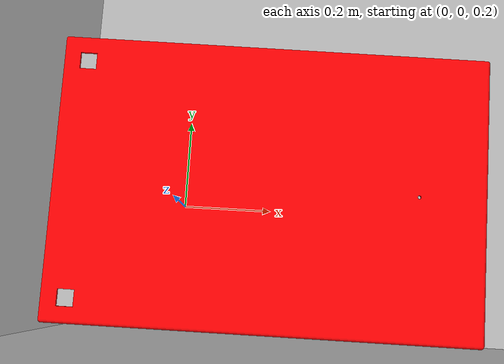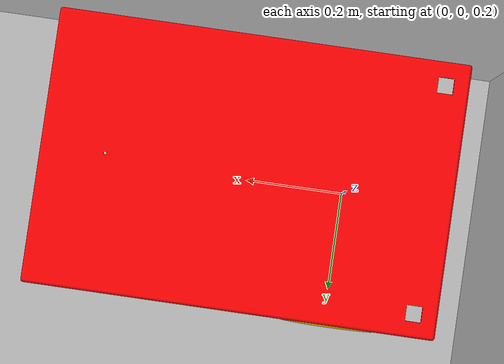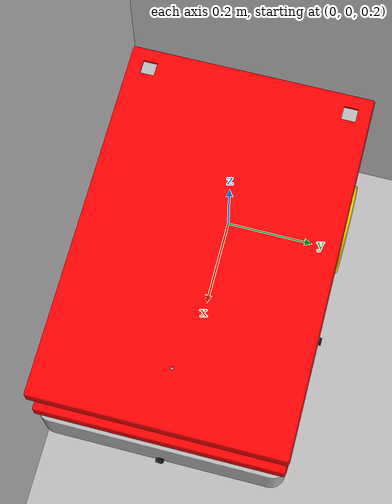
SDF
<?xml version="1.0" ?>

<sdf version='1.7'>
  <world name='default'>

    <gui>
     <camera name="user_camera">
       <pose>-8.2 7.2 17 0 0.5 0.6</pose>
     </camera>
    </gui>

    <scene>
      <grid>false</grid>
      <ambient>0.4 0.4 0.4 1</ambient>
      <background>0.7 0.7 0.7 1</background>
      <shadows>1</shadows>
    </scene>

    <!-- Global light source -->
    <light name='sun' type='directional'>
      <cast_shadows>1</cast_shadows>
      <pose>0 0 10 0 -0 0</pose>
      <diffuse>0.8 0.8 0.8 1</diffuse>
      <specular>0.2 0.2 0.2 1</specular>
      <attenuation>
        <range>1000</range>
        <constant>0.9</constant>
        <linear>0.01</linear>
        <quadratic>0.001</quadratic>
      </attenuation>
      <direction>-0.5 0.1 -0.9</direction>
    </light>

    <gravity>0 0 -9.8</gravity>
    <magnetic_field>6e-06 2.3e-05 -4.2e-05</magnetic_field>

    <physics type='ode'>
      <max_step_size>0.001</max_step_size>
      <real_time_factor>1</real_time_factor>
      <real_time_update_rate>1000</real_time_update_rate>
    </physics>

    <!-- Factory -->
    <include>
      <name>factory</name>
      <pose>-0.3 -0.3 0 0 0 0</pose>
      <uri>model://factory_v1</uri>
    </include>

    <include>
      <pose>0 0 0.33 0 0 0</pose>
      <uri>model://scooby</uri>
    </include>

    <!-- Factory light sources -->
    <light name='user_point_light_0' type='point'>
      <pose>7 4 3.9 0 -0 0</pose>
      <diffuse>0.5 0.5 0.5 1</diffuse>
      <specular>0.1 0.1 0.1 1</specular>
      <attenuation>
        <range>20</range>
        <constant>0.01</constant>
        <linear>0.01</linear>
        <quadratic>0.02</quadratic>
      </attenuation>
      <cast_shadows>0</cast_shadows>
      <direction>0 0 -1</direction>
      <spot>
        <inner_angle>0</inner_angle>
        <outer_angle>0</outer_angle>
        <falloff>0</falloff>
      </spot>
    </light>
    <light name='user_point_light_1' type='point'>
      <pose>8 12 3.9 0 -0 0</pose>
      <diffuse>0.5 0.5 0.5 1</diffuse>
      <specular>0.1 0.1 0.1 1</specular>
      <attenuation>
        <range>20</range>
        <constant>0.01</constant>
        <linear>0.01</linear>
        <quadratic>0.02</quadratic>
      </attenuation>
      <cast_shadows>0</cast_shadows>
      <direction>0 0 -1</direction>
      <spot>
        <inner_angle>0</inner_angle>
        <outer_angle>0</outer_angle>
        <falloff>0</falloff>
      </spot>
    </light>
    <light name='user_point_light_2' type='point'>
      <pose>20 11.5 3.9 0 -0 0</pose>
      <diffuse>0.5 0.5 0.5 1</diffuse>
      <specular>0.1 0.1 0.1 1</specular>
      <attenuation>
        <range>20</range>
        <constant>0.01</constant>
        <linear>0.01</linear>
        <quadratic>0.02</quadratic>
      </attenuation>
      <cast_shadows>0</cast_shadows>
      <direction>0 0 -1</direction>
      <spot>
        <inner_angle>0</inner_angle>
        <outer_angle>0</outer_angle>
        <falloff>0</falloff>
      </spot>
    </light>
    <light name='user_point_light_3' type='point'>
      <pose>0.7 16 3.9 0 -0 0</pose>
      <diffuse>0.5 0.5 0.5 1</diffuse>
      <specular>0.1 0.1 0.1 1</specular>
      <attenuation>
        <range>20</range>
        <constant>0.01</constant>
        <linear>0.01</linear>
        <quadratic>0.02</quadratic>
      </attenuation>
      <cast_shadows>0</cast_shadows>
      <direction>0 0 -1</direction>
      <spot>
        <inner_angle>0</inner_angle>
        <outer_angle>0</outer_angle>
        <falloff>0</falloff>
      </spot>
    </light>
    <light name='user_point_light_4' type='point'>
      <pose>24 22 3.9 0 -0 0</pose>
      <diffuse>0.5 0.5 0.5 1</diffuse>
      <specular>0.1 0.1 0.1 1</specular>
      <attenuation>
        <range>20</range>
        <constant>0.01</constant>
        <linear>0.01</linear>
        <quadratic>0.02</quadratic>
      </attenuation>
      <cast_shadows>0</cast_shadows>
      <direction>0 0 -1</direction>
      <spot>
        <inner_angle>0</inner_angle>
        <outer_angle>0</outer_angle>
        <falloff>0</falloff>
      </spot>
    </light>
    <light name='user_point_light_5' type='point'>
      <pose>16 22 3.9 0 -0 0</pose>
      <diffuse>0.5 0.5 0.5 1</diffuse>
      <specular>0.1 0.1 0.1 1</specular>
      <attenuation>
        <range>20</range>
        <constant>0.01</constant>
        <linear>0.01</linear>
        <quadratic>0.02</quadratic>
      </attenuation>
      <cast_shadows>0</cast_shadows>
      <direction>0 0 -1</direction>
      <spot>
        <inner_angle>0</inner_angle>
        <outer_angle>0</outer_angle>
        <falloff>0</falloff>
      </spot>
    </light>
    <light name='user_point_light_6' type='point'>
      <pose>8 22 3.9 0 -0 0</pose>
      <diffuse>0.5 0.5 0.5 1</diffuse>
      <specular>0.1 0.1 0.1 1</specular>
      <attenuation>
        <range>20</range>
        <constant>0.01</constant>
        <linear>0.01</linear>
        <quadratic>0.02</quadratic>
      </attenuation>
      <cast_shadows>0</cast_shadows>
      <direction>0 0 -1</direction>
      <spot>
        <inner_angle>0</inner_angle>
        <outer_angle>0</outer_angle>
        <falloff>0</falloff>
      </spot>
    </light>
    <light name='user_point_light_7' type='point'>
      <pose>24 32 3.9 0 -0 0</pose>
      <diffuse>0.5 0.5 0.5 1</diffuse>
      <specular>0.1 0.1 0.1 1</specular>
      <attenuation>
        <range>20</range>
        <constant>0.01</constant>
        <linear>0.01</linear>
        <quadratic>0.02</quadratic>
      </attenuation>
      <cast_shadows>0</cast_shadows>
      <direction>0 0 -1</direction>
      <spot>
        <inner_angle>0</inner_angle>
        <outer_angle>0</outer_angle>
        <falloff>0</falloff>
      </spot>
    </light>
    <light name='user_point_light_8' type='point'>
      <pose>16 32 3.9 0 -0 0</pose>
      <diffuse>0.5 0.5 0.5 1</diffuse>
      <specular>0.1 0.1 0.1 1</specular>
      <attenuation>
        <range>20</range>
        <constant>0.01</constant>
        <linear>0.01</linear>
        <quadratic>0.02</quadratic>
      </attenuation>
      <cast_shadows>0</cast_shadows>
      <direction>0 0 -1</direction>
      <spot>
        <inner_angle>0</inner_angle>
        <outer_angle>0</outer_angle>
        <falloff>0</falloff>
      </spot>
    </light>
    <light name='user_point_light_9' type='point'>
      <pose>8 32 3.9 0 -0 0</pose>
      <diffuse>0.5 0.5 0.5 1</diffuse>
      <specular>0.1 0.1 0.1 1</specular>
      <attenuation>
        <range>20</range>
        <constant>0.01</constant>
        <linear>0.01</linear>
        <quadratic>0.02</quadratic>
      </attenuation>
      <cast_shadows>0</cast_shadows>
      <direction>0 0 -1</direction>
      <spot>
        <inner_angle>0</inner_angle>
        <outer_angle>0</outer_angle>
        <falloff>0</falloff>
      </spot>
    </light>
    <light name='user_point_light_10' type='point'>
      <pose>24 42 3.9 0 -0 0</pose>
      <diffuse>0.5 0.5 0.5 1</diffuse>
      <specular>0.1 0.1 0.1 1</specular>
      <attenuation>
        <range>20</range>
        <constant>0.01</constant>
        <linear>0.01</linear>
        <quadratic>0.02</quadratic>
      </attenuation>
      <cast_shadows>0</cast_shadows>
      <direction>0 0 -1</direction>
      <spot>
        <inner_angle>0</inner_angle>
        <outer_angle>0</outer_angle>
        <falloff>0</falloff>
      </spot>
    </light>
    <light name='user_point_light_11' type='point'>
      <pose>16 42 3.9 0 -0 0</pose>
      <diffuse>0.5 0.5 0.5 1</diffuse>
      <specular>0.1 0.1 0.1 1</specular>
      <attenuation>
        <range>20</range>
        <constant>0.01</constant>
        <linear>0.01</linear>
        <quadratic>0.02</quadratic>
      </attenuation>
      <cast_shadows>0</cast_shadows>
      <direction>0 0 -1</direction>
      <spot>
        <inner_angle>0</inner_angle>
        <outer_angle>0</outer_angle>
        <falloff>0</falloff>
      </spot>
    </light>
    <light name='user_point_light_12' type='point'>
      <pose>8 42 3.9 0 -0 0</pose>
      <diffuse>0.5 0.5 0.5 1</diffuse>
      <specular>0.1 0.1 0.1 1</specular>
      <attenuation>
        <range>20</range>
        <constant>0.01</constant>
        <linear>0.01</linear>
        <quadratic>0.02</quadratic>
      </attenuation>
      <cast_shadows>0</cast_shadows>
      <direction>0 0 -1</direction>
      <spot>
        <inner_angle>0</inner_angle>
        <outer_angle>0</outer_angle>
        <falloff>0</falloff>
      </spot>
    </light>
    <light name='user_point_light_13' type='point'>
      <pose>24 52 3.9 0 -0 0</pose>
      <diffuse>0.5 0.5 0.5 1</diffuse>
      <specular>0.1 0.1 0.1 1</specular>
      <attenuation>
        <range>20</range>
        <constant>0.01</constant>
        <linear>0.01</linear>
        <quadratic>0.02</quadratic>
      </attenuation>
      <cast_shadows>0</cast_shadows>
      <direction>0 0 -1</direction>
      <spot>
        <inner_angle>0</inner_angle>
        <outer_angle>0</outer_angle>
        <falloff>0</falloff>
      </spot>
    </light>
    <light name='user_point_light_14' type='point'>
      <pose>16 52 3.9 0 -0 0</pose>
      <diffuse>0.5 0.5 0.5 1</diffuse>
      <specular>0.1 0.1 0.1 1</specular>
      <attenuation>
        <range>20</range>
        <constant>0.01</constant>
        <linear>0.01</linear>
        <quadratic>0.02</quadratic>
      </attenuation>
      <cast_shadows>0</cast_shadows>
      <direction>0 0 -1</direction>
      <spot>
        <inner_angle>0</inner_angle>
        <outer_angle>0</outer_angle>
        <falloff>0</falloff>
      </spot>
    </light>
    <light name='user_point_light_15' type='point'>
      <pose>8 52 3.9 0 -0 0</pose>
      <diffuse>0.5 0.5 0.5 1</diffuse>
      <specular>0.1 0.1 0.1 1</specular>
      <attenuation>
        <range>20</range>
        <constant>0.01</constant>
        <linear>0.01</linear>
        <quadratic>0.02</quadratic>
      </attenuation>
      <cast_shadows>0</cast_shadows>
      <direction>0 0 -1</direction>
      <spot>
        <inner_angle>0</inner_angle>
        <outer_angle>0</outer_angle>
        <falloff>0</falloff>
      </spot>
    </light>
    <light name='user_point_light_16' type='point'>
      <pose>24 62 3.9 0 -0 0</pose>
      <diffuse>0.5 0.5 0.5 1</diffuse>
      <specular>0.1 0.1 0.1 1</specular>
      <attenuation>
        <range>20</range>
        <constant>0.01</constant>
        <linear>0.01</linear>
        <quadratic>0.02</quadratic>
      </attenuation>
      <cast_shadows>0</cast_shadows>
      <direction>0 0 -1</direction>
      <spot>
        <inner_angle>0</inner_angle>
        <outer_angle>0</outer_angle>
        <falloff>0</falloff>
      </spot>
    </light>
    <light name='user_point_light_17' type='point'>
      <pose>16 62 3.9 0 -0 0</pose>
      <diffuse>0.5 0.5 0.5 1</diffuse>
      <specular>0.1 0.1 0.1 1</specular>
      <attenuation>
        <range>20</range>
        <constant>0.01</constant>
        <linear>0.01</linear>
        <quadratic>0.02</quadratic>
      </attenuation>
      <cast_shadows>0</cast_shadows>
      <direction>0 0 -1</direction>
      <spot>
        <inner_angle>0</inner_angle>
        <outer_angle>0</outer_angle>
        <falloff>0</falloff>
      </spot>
    </light>
    <light name='user_point_light_18' type='point'>
      <pose>8 62 3.9 0 -0 0</pose>
      <diffuse>0.5 0.5 0.5 1</diffuse>
      <specular>0.1 0.1 0.1 1</specular>
      <attenuation>
        <range>20</range>
        <constant>0.01</constant>
        <linear>0.01</linear>
        <quadratic>0.02</quadratic>
      </attenuation>
      <cast_shadows>0</cast_shadows>
      <direction>0 0 -1</direction>
      <spot>
        <inner_angle>0</inner_angle>
        <outer_angle>0</outer_angle>
        <falloff>0</falloff>
      </spot>
    </light>
    <light name='user_point_light_19' type='point'>
      <pose>24 72 3.9 0 -0 0</pose>
      <diffuse>0.5 0.5 0.5 1</diffuse>
      <specular>0.1 0.1 0.1 1</specular>
      <attenuation>
        <range>20</range>
        <constant>0.01</constant>
        <linear>0.01</linear>
        <quadratic>0.02</quadratic>
      </attenuation>
      <cast_shadows>0</cast_shadows>
      <direction>0 0 -1</direction>
      <spot>
        <inner_angle>0</inner_angle>
        <outer_angle>0</outer_angle>
        <falloff>0</falloff>
      </spot>
    </light>
    <light name='user_point_light_20' type='point'>
      <pose>16 72 3.9 0 -0 0</pose>
      <diffuse>0.5 0.5 0.5 1</diffuse>
      <specular>0.1 0.1 0.1 1</specular>
      <attenuation>
        <range>20</range>
        <constant>0.01</constant>
        <linear>0.01</linear>
        <quadratic>0.02</quadratic>
      </attenuation>
      <cast_shadows>0</cast_shadows>
      <direction>0 0 -1</direction>
      <spot>
        <inner_angle>0</inner_angle>
        <outer_angle>0</outer_angle>
        <falloff>0</falloff>
      </spot>
    </light>
    <light name='user_point_light_21' type='point'>
      <pose>8 72 3.9 0 -0 0</pose>
      <diffuse>0.5 0.5 0.5 1</diffuse>
      <specular>0.1 0.1 0.1 1</specular>
      <attenuation>
        <range>20</range>
        <constant>0.01</constant>
        <linear>0.01</linear>
        <quadratic>0.02</quadratic>
      </attenuation>
      <cast_shadows>0</cast_shadows>
      <direction>0 0 -1</direction>
      <spot>
        <inner_angle>0</inner_angle>
        <outer_angle>0</outer_angle>
        <falloff>0</falloff>
      </spot>
    </light>
    <light name='user_point_light_22' type='point'>
      <pose>24 82 3.9 0 -0 0</pose>
      <diffuse>0.5 0.5 0.5 1</diffuse>
      <specular>0.1 0.1 0.1 1</specular>
      <attenuation>
        <range>20</range>
        <constant>0.01</constant>
        <linear>0.01</linear>
        <quadratic>0.02</quadratic>
      </attenuation>
      <cast_shadows>0</cast_shadows>
      <direction>0 0 -1</direction>
      <spot>
        <inner_angle>0</inner_angle>
        <outer_angle>0</outer_angle>
        <falloff>0</falloff>
      </spot>
    </light>
    <light name='user_point_light_23' type='point'>
      <pose>16 82 3.9 0 -0 0</pose>
      <diffuse>0.5 0.5 0.5 1</diffuse>
      <specular>0.1 0.1 0.1 1</specular>
      <attenuation>
        <range>20</range>
        <constant>0.01</constant>
        <linear>0.01</linear>
        <quadratic>0.02</quadratic>
      </attenuation>
      <cast_shadows>0</cast_shadows>
      <direction>0 0 -1</direction>
      <spot>
        <inner_angle>0</inner_angle>
        <outer_angle>0</outer_angle>
        <falloff>0</falloff>
      </spot>
    </light>
    <light name='user_point_light_24' type='point'>
      <pose>8 82 3.9 0 -0 0</pose>
      <diffuse>0.5 0.5 0.5 1</diffuse>
      <specular>0.1 0.1 0.1 1</specular>
      <attenuation>
        <range>20</range>
        <constant>0.01</constant>
        <linear>0.01</linear>
        <quadratic>0.02</quadratic>
      </attenuation>
      <cast_shadows>0</cast_shadows>
      <direction>0 0 -1</direction>
      <spot>
        <inner_angle>0</inner_angle>
        <outer_angle>0</outer_angle>
        <falloff>0</falloff>
      </spot>
    </light>
    <light name='user_point_light_25' type='point'>
      <pose>24 92 3.9 0 -0 0</pose>
      <diffuse>0.5 0.5 0.5 1</diffuse>
      <specular>0.1 0.1 0.1 1</specular>
      <attenuation>
        <range>20</range>
        <constant>0.01</constant>
        <linear>0.01</linear>
        <quadratic>0.02</quadratic>
      </attenuation>
      <cast_shadows>0</cast_shadows>
      <direction>0 0 -1</direction>
      <spot>
        <inner_angle>0</inner_angle>
        <outer_angle>0</outer_angle>
        <falloff>0</falloff>
      </spot>
    </light>
    <light name='user_point_light_26' type='point'>
      <pose>16 92 3.9 0 -0 0</pose>
      <diffuse>0.5 0.5 0.5 1</diffuse>
      <specular>0.1 0.1 0.1 1</specular>
      <attenuation>
        <range>20</range>
        <constant>0.01</constant>
        <linear>0.01</linear>
        <quadratic>0.02</quadratic>
      </attenuation>
      <cast_shadows>0</cast_shadows>
      <direction>0 0 -1</direction>
      <spot>
        <inner_angle>0</inner_angle>
        <outer_angle>0</outer_angle>
        <falloff>0</falloff>
      </spot>
    </light>
    <light name='user_point_light_27' type='point'>
      <pose>8 92 3.9 0 -0 0</pose>
      <diffuse>0.5 0.5 0.5 1</diffuse>
      <specular>0.1 0.1 0.1 1</specular>
      <attenuation>
        <range>20</range>
        <constant>0.01</constant>
        <linear>0.01</linear>
        <quadratic>0.02</quadratic>
      </attenuation>
      <cast_shadows>0</cast_shadows>
      <direction>0 0 -1</direction>
      <spot>
        <inner_angle>0</inner_angle>
        <outer_angle>0</outer_angle>
        <falloff>0</falloff>
      </spot>
    </light>

  </world>
</sdf>

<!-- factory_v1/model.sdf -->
<sdf version='1.7'>
  <model name='factory_v1'>

    <link name='link_0'>

      <pose>0 0 0 0 0 0</pose>
      <gravity>1</gravity>
      <self_collide>0</self_collide>
      <kinematic>0</kinematic>
      <enable_wind>0</enable_wind>

      <visual name='visual'>
        <pose>0 0 0 0 0 0</pose>
        <geometry>
          <mesh>
            <uri>model://factory_v1/meshes/factory.dae</uri>
            <scale>1 1 1</scale>
          </mesh>
        </geometry>
        <transparency>0</transparency>
        <cast_shadows>1</cast_shadows>
      </visual>

      <collision name='collision'>
        <laser_retro>0</laser_retro>
        <max_contacts>10</max_contacts>
        <pose>0 0 0 0 0 0</pose>
        <geometry>
          <mesh>
            <uri>model://factory_v1/meshes/factory.dae</uri>
            <scale>1 1 1</scale>
          </mesh>
        </geometry>
        <surface>
          <friction>
            <ode>
              <mu>1</mu>
              <mu2>1</mu2>
              <fdir1>0 0 0</fdir1>
              <slip1>0</slip1>
              <slip2>0</slip2>
            </ode>
            <torsional>
              <coefficient>1</coefficient>
              <patch_radius>0</patch_radius>
              <surface_radius>0</surface_radius>
              <use_patch_radius>1</use_patch_radius>
              <ode>
                <slip>0</slip>
              </ode>
            </torsional>
          </friction>
          <contact>
            <collide_without_contact>0</collide_without_contact>
            <collide_without_contact_bitmask>1</collide_without_contact_bitmask>
            <collide_bitmask>1</collide_bitmask>
            <ode>
              <soft_cfm>0</soft_cfm>
              <soft_erp>0.2</soft_erp>
              <kp>1e+13</kp>
              <kd>1</kd>
              <max_vel>0.01</max_vel>
              <min_depth>0</min_depth>
            </ode>
          </contact>
        </surface>
      </collision>

    </link>
    <static>1</static>
    <allow_auto_disable>1</allow_auto_disable>
  </model>
</sdf>

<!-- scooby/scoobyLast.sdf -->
<sdf version='1.7'>
  <model name='scooby'>
    <link name='base_link'>
      <inertial>
       <pose>0 0 0 0 -0 0</pose>
        <mass>7.4313</mass>
        <inertia>
          <ixx>0.31999</ixx>
          <ixy>2.761E-07</ixy>
          <ixz>0.014025</ixz>
          <iyy>0.58221</iyy>
          <iyz>-3.6194E-08</iyz>
          <izz>0.76546</izz>
        </inertia>
      </inertial>
      <collision name='base_link_collision'>
        <pose>0 0 0 0 -0 0</pose>
        <geometry>
          <mesh>
            <scale>1 1 1</scale>
            <uri>model://scooby/meshes/base_link.STL</uri>
          </mesh>
        </geometry>
      </collision>

      <collision name='base_link_fixed_joint_lump__Care_B_Link_collision_2'>
        <pose>0 0 0 0 -0 0</pose>
        <geometry>
          <mesh>
            <scale>1 1 1</scale>
            <uri>model://scooby/meshes/Care_B_Link.STL</uri>
          </mesh>
        </geometry>
      </collision>
      <collision name='base_link_fixed_joint_lump__Care_Down_Velodyne_Link_collision_3'>
        <pose>0 0 0 0 -0 0</pose>
        <geometry>
          <mesh>
            <scale>1 1 1</scale>
            <uri>model://scooby/meshes/Care_Down_Velodyne_Link.dae</uri>
          </mesh>
        </geometry>
      </collision>
      <collision name='base_link_fixed_joint_lump__Care_F_Link_collision_4'>
        <pose>0 0 0 0 -0 0</pose>
        <geometry>
          <mesh>
            <scale>1 1 1</scale>
            <uri>model://scooby/meshes/Care_F_Link.STL</uri>
          </mesh>
        </geometry>
      </collision>
      <collision name='base_link_fixed_joint_lump__Care_L_Link_collision_5'>
        <pose>0 0 0 0 -0 0</pose>
        <geometry>
          <mesh>
            <scale>1 1 1</scale>
            <uri>model://scooby/meshes/Care_L_Link.STL</uri>
          </mesh>
        </geometry>
      </collision>
      <collision name='base_link_fixed_joint_lump__Care_R_Link_collision_6'>
        <pose>0 0 0 0 -0 0</pose>
        <geometry>
          <mesh>
            <scale>1 1 1</scale>
            <uri>model://scooby/meshes/Care_R_Link.STL</uri>
          </mesh>
        </geometry>
      </collision>
      <collision name='base_link_fixed_joint_lump__Care_UP_Velodyne_Link_collision_7'>
        <pose>0 0 0 0 -0 0</pose>
        <geometry>
          <mesh>
            <scale>1 1 1</scale>
            <uri>model://scooby/meshes/Care_UP_Velodyne_Link.dae</uri>
          </mesh>
        </geometry>
      </collision>
      <collision name='base_link_fixed_joint_lump__IMU_F_Link_collision_8'>
        <pose>0.473193 -0.020487 0.07725 0 -0 0</pose>
        <geometry>
          <mesh>
            <scale>1 1 1</scale>
            <uri>model://scooby/meshes/IMU_F_Link.STL</uri>
          </mesh>
        </geometry>
      </collision>

      <collision name='base_link_fixed_joint_lump__UTS_B_Link_collision_10'>
        <pose>-0.199908 0 -0.02 0 -0 0</pose>
        <geometry>
          <mesh>
            <scale>1 1 1</scale>
            <uri>model://scooby/meshes/UTS_B_Link.dae</uri>
          </mesh>
        </geometry>
      </collision>
      <collision name='base_link_fixed_joint_lump__UTS_F_Link_collision_11'>
        <pose>0.527198 0 -0.02 3.14159 1.5708 0</pose>
        <geometry>
          <mesh>
            <scale>1 1 1</scale>
            <uri>model://scooby/meshes/UTS_F_Link.dae</uri>
          </mesh>
        </geometry>
      </collision>
      <collision name='base_link_fixed_joint_lump__UTS_L_Link_collision_12'>
        <pose>0.259268 0.270588 -0.02 0 -0 0</pose>
        <geometry>
          <mesh>
            <scale>1 1 1</scale>
            <uri>model://scooby/meshes/UTS_L_Link.dae</uri>
          </mesh>
        </geometry>
      </collision>
      <collision name='base_link_fixed_joint_lump__UTS_R_Link_collision_13'>
        <pose>0.259273 -0.270588 -0.02 0 -0 0</pose>
        <geometry>
          <mesh>
            <scale>1 1 1</scale>
            <uri>model://scooby/meshes/UTS_R_Link.dae</uri>
          </mesh>
        </geometry>
      </collision>
      <collision name='base_link_fixed_joint_lump__Velodyne_Link_collision_14'>
        <pose>0 0 0 0 -0 0</pose>
        <geometry>
          <mesh>
            <scale>1 1 1</scale>
            <uri>model://scooby/meshes/Velodyne_Link.STL</uri>
          </mesh>
        </geometry>
      </collision>
      <visual name='base_link_visual'>
        <pose>0 0 0 0 -0 0</pose>
        <geometry>
          <mesh>
            <scale>1 1 1</scale>
            <uri>model://scooby/meshes/base_link.STL</uri>
          </mesh>
        </geometry>
      </visual>

      <visual name='base_link_fixed_joint_lump__Care_B_Link_visual_2'>
        <pose>0 0 0 0 -0 0</pose>
        <geometry>
          <mesh>
            <scale>1 1 1</scale>
            <uri>model://scooby/meshes/Care_B_Link.STL</uri>
          </mesh>
        </geometry>
      </visual>
      <visual name='base_link_fixed_joint_lump__Care_Down_Velodyne_Link_visual_3'>
        <pose>0 0 0 0 -0 0</pose>
        <geometry>
          <mesh>
            <scale>1 1 1</scale>
            <uri>model://scooby/meshes/Care_Down_Velodyne_Link.dae</uri>
          </mesh>
        </geometry>
      </visual>
      <visual name='base_link_fixed_joint_lump__Care_F_Link_visual_4'>
        <pose>0 0 0 0 -0 0</pose>
        <geometry>
          <mesh>
            <scale>1 1 1</scale>
            <uri>model://scooby/meshes/Care_F_Link.STL</uri>
          </mesh>
        </geometry>
      </visual>
      <visual name='base_link_fixed_joint_lump__Care_L_Link_visual_5'>
        <pose>0 0 0 0 -0 0</pose>
        <geometry>
          <mesh>
            <scale>1 1 1</scale>
            <uri>model://scooby/meshes/Care_L_Link.STL</uri>
          </mesh>
        </geometry>
      </visual>
      <visual name='base_link_fixed_joint_lump__Care_R_Link_visual_6'>
        <pose>0 0 0 0 -0 0</pose>
        <geometry>
          <mesh>
            <scale>1 1 1</scale>
            <uri>model://scooby/meshes/Care_R_Link.STL</uri>
          </mesh>
        </geometry>
      </visual>
      <visual name='base_link_fixed_joint_lump__Care_UP_Velodyne_Link_visual_7'>
        <pose>0 0 0 0 -0 0</pose>
        <geometry>
          <mesh>
            <scale>1 1 1</scale>
            <uri>model://scooby/meshes/Care_UP_Velodyne_Link.dae</uri>
          </mesh>
        </geometry>
      </visual>
      <visual name='base_link_fixed_joint_lump__IMU_F_Link_visual_8'>
        <pose>0.473193 -0.020487 0.07725 0 -0 0</pose>
        <geometry>
          <mesh>
            <scale>1 1 1</scale>
            <uri>model://scooby/meshes/IMU_F_Link.STL</uri>
          </mesh>
        </geometry>
      </visual>

      <visual name='base_link_fixed_joint_lump__UTS_B_Link_visual_10'>
        <pose>-0.199908 0 -0.02 0 -0 0</pose>
        <geometry>
          <mesh>
            <scale>1 1 1</scale>
            <uri>model://scooby/meshes/UTS_B_Link.dae</uri>
          </mesh>
        </geometry>
      </visual>
      <visual name='base_link_fixed_joint_lump__UTS_F_Link_visual_11'>
        <pose>0.527198 0 -0.02 3.14159 1.5708 0</pose>
        <geometry>
          <mesh>
            <scale>1 1 1</scale>
            <uri>model://scooby/meshes/UTS_F_Link.dae</uri>
          </mesh>
        </geometry>
      </visual>
      <visual name='base_link_fixed_joint_lump__UTS_L_Link_visual_12'>
        <pose>0.259268 0.270588 -0.02 0 -0 0</pose>
        <geometry>
          <mesh>
            <scale>1 1 1</scale>
            <uri>model://scooby/meshes/UTS_L_Link.dae</uri>
          </mesh>
        </geometry>
      </visual>
      <visual name='base_link_fixed_joint_lump__UTS_R_Link_visual_13'>
        <pose>0.259273 -0.270588 -0.02 0 -0 0</pose>
        <geometry>
          <mesh>
            <scale>1 1 1</scale>
            <uri>model://scooby/meshes/UTS_R_Link.dae</uri>
          </mesh>
        </geometry>
      </visual>
      <visual name='base_link_fixed_joint_lump__Velodyne_Link_visual_14'>
        <pose>0.4672 0 0.178136 0 -0 0</pose>
        <geometry>
          <mesh>
            <scale>1 1 1</scale>
            <uri>model://scooby/meshes/Velodyne_Link.STL</uri>
          </mesh>
        </geometry>
      </visual>

<!-- ultrasonic sensor right -->

      <!-- ultrasonic sensor left -->

      <sensor name="sensor_ray" type="ray">
        <pose>0.4672 0 0.178136 0 -0 0</pose>
        <ray>
          <scan>
            <horizontal>
              <samples>200</samples>
              <resolution>1.0</resolution>
              <min_angle>-1.57.</min_angle>
              <max_angle>1.57</max_angle>
            </horizontal>
          </scan>
          <range>
            <min>0.05</min>
            <max>50.0</max>
          </range>
        </ray>
        <always_on>true</always_on>
        <visualize>true</visualize>
        <update_rate>50.0</update_rate>
        <plugin name="laser" filename="libgazebo_ros_ray_sensor.so">
          <ros>
            <remapping>~/out:=scan</remapping>
          </ros>
          <frame_name>UTS_F_Link</frame_name>
          <output_type>sensor_msgs/LaserScan</output_type>
        </plugin>
      </sensor>

    </link>

    <joint name='Garfo_Joint' type='fixed'>
      <pose relative_to='base_link'>0.39427 0 0.07325 0 -0 0</pose>
      <parent>base_link</parent>
      <child>Garfo_Link</child>
      <axis>
        <xyz>0 0 1</xyz>
        <limit>
          <lower>-1e+16</lower>
          <upper>1e+16</upper>
        </limit>
        <dynamics>
          <spring_reference>0</spring_reference>
          <spring_stiffness>0</spring_stiffness>
        </dynamics>
      </axis>
    </joint>
    <link name='Garfo_Link'>
      <pose relative_to='Garfo_Joint'>0 0 0 0 -0 0</pose>
      <inertial>
        <pose>0.008845 -4.2e-05 -0.026395 0 -0 0</pose>
        <mass>0.056343</mass>
        <inertia>
          <ixx>6.39445e-05</ixx>
          <ixy>1.72309e-08</ixy>
          <ixz>1.08977e-05</ixz>
          <iyy>6.7327e-05</iyy>
          <iyz>-3.73912e-08</iyz>
          <izz>2.76031e-05</izz>
        </inertia>
      </inertial>
      <collision name='Garfo_Link_collision'>
        <pose>0 0 0 0 -0 0</pose>
        <geometry>
          <mesh>
            <scale>1 1 1</scale>
            <uri>model://scooby/meshes/Garfo_Link.STL</uri>
          </mesh>
        </geometry>
      </collision>
      <visual name='Garfo_Link_visual'>
        <pose>0 0 0 0 -0 0</pose>
        <geometry>
          <mesh>
            <scale>1 1 1</scale>
            <uri>model://scooby/meshes/Garfo_Link.STL</uri>
          </mesh>
        </geometry>
      </visual>
    </link>
    <joint name='Castor_Joint' type='fixed'>
      <pose relative_to='Garfo_Link'>0.032501 -0.000163 -0.098248 0 -0 0</pose>
      <parent>Garfo_Link</parent>
      <child>Castor_Link</child>
      <axis>
        <xyz>0.005021 0.999987 0</xyz>
        <limit>
          <lower>-1e+16</lower>
          <upper>1e+16</upper>
        </limit>
        <dynamics>
          <spring_reference>0</spring_reference>
          <spring_stiffness>0</spring_stiffness>
        </dynamics>
      </axis>
    </joint>
    <link name='Castor_Link'>
      <pose relative_to='Castor_Joint'>0 0 0 0 -0 0</pose>
      <inertial>
        <pose>-0 0 0 0 -0 0</pose>
        <mass>0.348291</mass>
        <inertia>
          <ixx>0.000494821</ixx>
          <ixy>2.36991e-06</ixy>
          <ixz>-7.72435e-20</ixz>
          <iyy>0.000966806</iyy>
          <iyz>-6.56036e-18</iyz>
          <izz>0.000494809</izz>
        </inertia>
      </inertial>
      <collision name='Castor_Link_collision'>
        <pose>0 0 0 0 -0 0</pose>
        <geometry>
          <mesh>
            <scale>1 1 1</scale>
            <uri>model://scooby/meshes/Castor_Link.dae</uri>
          </mesh>
        </geometry>
      </collision>
      <visual name='Castor_Link_visual'>
        <pose>0 0 0 0 -0 0</pose>
        <geometry>
          <mesh>
            <scale>1 1 1</scale>
            <uri>model://scooby/meshes/Castor_Link.dae</uri>
          </mesh>
        </geometry>
      </visual>
    </link>
    <joint name='Roda_L_Joint' type='revolute'>
      <pose relative_to='base_link'>0 0.239 0 0 -0 0</pose>
      <parent>base_link</parent>
      <child>Roda_L_Link</child>
      <axis>
        <xyz>0 1 0</xyz>
        <limit>
          <lower>-1e+16</lower>
          <upper>1e+16</upper>
        </limit>
        <dynamics>
          <spring_reference>0</spring_reference>
          <spring_stiffness>0</spring_stiffness>
        </dynamics>
      </axis>
    </joint>
    <link name='Roda_L_Link'>
      <pose relative_to='Roda_L_Joint'>0 0 0 0 -0 0</pose>
      <inertial>
        <pose>-3e-06 -0.001905 -1e-06 0 -0 0</pose>
        <mass>1.30641</mass>
        <inertia>
          <ixx>0.00432108</ixx>
          <ixy>-7.93594e-08</ixy>
          <ixz>1.46087e-08</ixz>
          <iyy>0.00793978</iyy>
          <iyz>-3.02598e-08</iyz>
          <izz>0.00432105</izz>
        </inertia>
      </inertial>
      <collision name='Roda_L_Link_collision'>
        <pose>0 0 0 0 -0 0</pose>
        <geometry>
          <mesh>
            <scale>1 1 1</scale>
            <uri>model://scooby/meshes/Roda_L_Link.dae</uri>
          </mesh>
        </geometry>
      </collision>
      <visual name='Roda_L_Link_visual'>
        <pose>0 0 0 0 -0 0</pose>
        <geometry>
          <mesh>
            <scale>1 1 1</scale>
            <uri>model://scooby/meshes/Roda_L_Link.dae</uri>
          </mesh>
        </geometry>
      </visual>
    </link>
    <joint name='Roda_R_Joint' type='revolute'>
      <pose relative_to='base_link'>0 -0.239 0 0 -0 0</pose>
      <parent>base_link</parent>
      <child>Roda_R_Link</child>
      <axis>
        <xyz>0 1 0</xyz>
        <limit>
          <lower>-1e+16</lower>
          <upper>1e+16</upper>
        </limit>
        <dynamics>
          <spring_reference>0</spring_reference>
          <spring_stiffness>0</spring_stiffness>
        </dynamics>
      </axis>
    </joint>
    <link name='Roda_R_Link'>
      <pose relative_to='Roda_R_Joint'>0 0 0 0 -0 0</pose>
      <inertial>
        <pose>1e-06 0.001905 3e-06 0 -0 0</pose>
        <mass>1.30641</mass>
        <inertia>
          <ixx>0.00432105</ixx>
          <ixy>-1.97328e-08</ixy>
          <ixz>9.91657e-09</ixz>
          <iyy>0.00793978</iyy>
          <iyz>-8.26086e-08</iyz>
          <izz>0.00432109</izz>
        </inertia>
      </inertial>
      <collision name='Roda_R_Link_collision'>
        <pose>0 0 0 0 -0 0</pose>
        <geometry>
          <mesh>
            <scale>1 1 1</scale>
            <uri>model://scooby/meshes/Roda_R_Link.dae</uri>
          </mesh>
        </geometry>
      </collision>
      <visual name='Roda_R_Link_visual'>
        <pose>0 0 0 0 -0 0</pose>
        <geometry>
          <mesh>
            <scale>1 1 1</scale>
            <uri>model://scooby/meshes/Roda_R_Link.dae</uri>
          </mesh>
        </geometry>
      </visual>
    </link>

    <plugin name='diff_drive' filename='libgazebo_ros_diff_drive.so'>

      <ros>
        <argument>tf:=tf</argument>
        <argument>odom:=odom</argument>
      </ros>

      <update_rate>50.0</update_rate>

      <!-- wheels -->
      <left_joint>Roda_L_Joint</left_joint>
      <right_joint>Roda_R_Joint</right_joint>

      <!-- kinematics -->
      <wheel_separation>0.406</wheel_separation>
      <wheel_diameter>0.200</wheel_diameter>

      <!-- limits -->
      <max_wheel_torque>20</max_wheel_torque>
      <max_wheel_acceleration>0.5</max_wheel_acceleration>

      <!-- output -->
      <publish_odom>true</publish_odom>
      <publish_odom_tf>true</publish_odom_tf>

      <odometry_frame>odom</odometry_frame>
      <robot_base_frame>base_link</robot_base_frame>

    </plugin>

    <plugin name="scooby_joint_state" filename="libgazebo_ros_joint_state_publisher.so">
      <ros>
        <remapping>~/out:=joint_states</remapping>
      </ros>
      <update_rate>50</update_rate>
      <joint_name>Roda_R_Joint</joint_name>
      <joint_name>Roda_L_Joint</joint_name>
    </plugin>

    <link name="imu_link">
      <sensor name="scooby_imu" type="imu">
        <always_on>true</always_on>
        <update_rate>200</update_rate>
        <imu>
          <angular_velocity>
            <x>
              <noise type="gaussian">
                <mean>0.0</mean>
                <stddev>2e-4</stddev>
              </noise>
            </x>
            <y>
              <noise type="gaussian">
                <mean>0.0</mean>
                <stddev>2e-4</stddev>
              </noise>
            </y>
            <z>
              <noise type="gaussian">
                <mean>0.0</mean>
                <stddev>2e-4</stddev>
              </noise>
            </z>
          </angular_velocity>
          <linear_acceleration>
            <x>
              <noise type="gaussian">
                <mean>0.0</mean>
                <stddev>1.7e-2</stddev>
              </noise>
            </x>
            <y>
              <noise type="gaussian">
                <mean>0.0</mean>
                <stddev>1.7e-2</stddev>
              </noise>
            </y>
            <z>
              <noise type="gaussian">
                <mean>0.0</mean>
                <stddev>1.7e-2</stddev>
              </noise>
            </z>
          </linear_acceleration>
        </imu>
        <plugin name="scooby_imu" filename="libgazebo_ros_imu_sensor.so">
          <ros>
            <remapping>~/out:=imu</remapping>
          </ros>
          <frame_name>IMU_F_Link</frame_name>
        </plugin>
      </sensor>
    </link>

    <joint name="imu_joint" type="fixed">
      <parent>base_link</parent>
      <child>imu_link</child>
      <pose>-0.032 0 0.068 0 0 0</pose>
      <axis>
        <xyz>0 0 1</xyz>
      </axis>
    </joint>

  </model>
</sdf>
